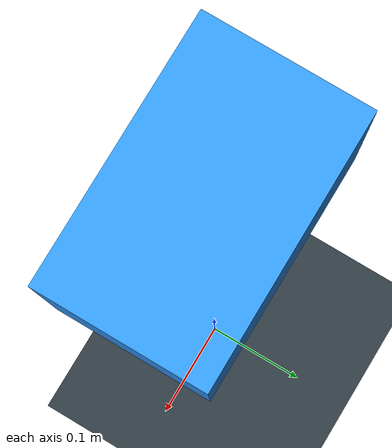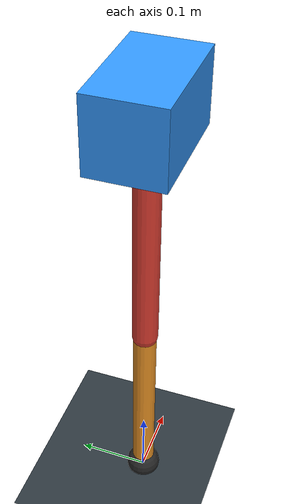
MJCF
<mujoco model="single_axis_two_bar">
  <compiler angle="radian" inertiafromgeom="true"/>
  <option timestep="0.001" integrator="implicitfast" gravity="0 0 -9.81"/>
  <default>
    <joint damping="0.08"/>
    <geom friction="1.2 0.01 0.0001" condim="3"/>
  </default>
  <worldbody>
    <geom name="floor" type="plane" size="5 5 0.1" rgba="0.18 0.22 0.25 1"/>
    <body name="carriage" pos="0 0 0.6207764575210392">
      <joint name="pole_slide" type="slide" axis="0 0 1"/>
      <geom name="payload" type="box" size="0.08 0.05 0.05" mass="2.3684020294796113" rgba="0.2 0.6 1 1"/>
      <body name="thigh" pos="0 0 0">
        <joint name="hip" type="hinge" axis="0 1 0"/>
        <geom name="thigh_link" type="capsule" fromto="0 0 0 0 0 -0.34282900462721916" size="0.018" mass="0.24427019588250776" rgba="0.9 0.25 0.2 1"/>
        <body name="shank" pos="0 0 -0.34282900462721916">
          <joint name="knee" type="hinge" axis="0 1 0"/>
          <geom name="shank_link" type="capsule" fromto="0 0 0 0 0 -0.27137352889962535" size="0.016" mass="0.1933572252257907" rgba="0.95 0.6 0.15 1"/>
          <geom name="foot" type="sphere" pos="0 0 -0.27137352889962535" size="0.025" mass="0.03" rgba="0.15 0.15 0.15 1"/>
          <site name="toe" pos="0 0 -0.27137352889962535" size="0.008"/>
        </body>
      </body>
    </body>
  </worldbody>
  <actuator>
    <motor name="hip_motor" joint="hip" ctrlrange="-31.705974896948216 31.705974896948216"/>
    <motor name="knee_motor" joint="knee" ctrlrange="-98.77315799743461 98.77315799743461"/>
  </actuator>
</mujoco>
